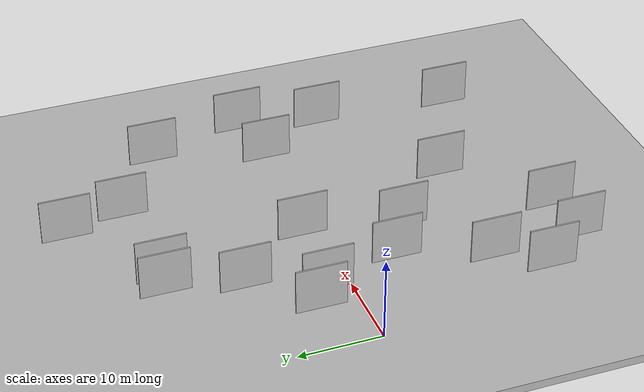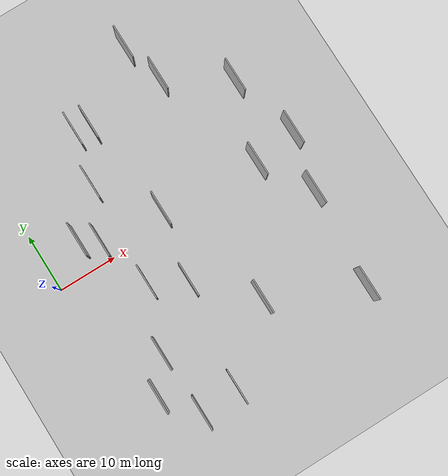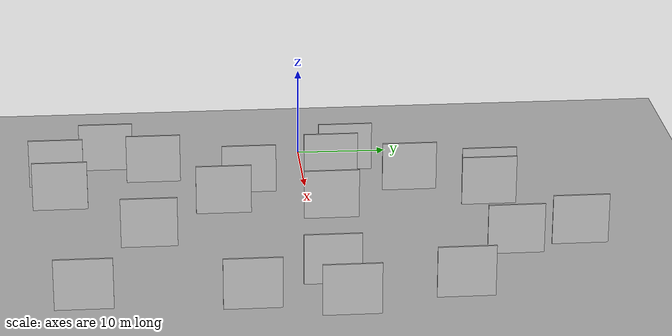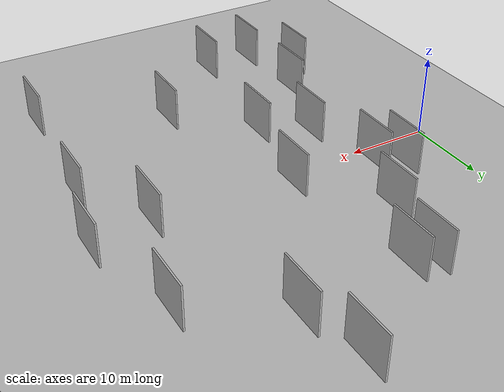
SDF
<?xml version="1.0" encoding="utf-8"?>

<sdf version="1.6">

   <world name="default">

      <gui fullscreen="0">

         <camera name="user_camera">

            <pose>-15 0 4.57585 0 0 0</pose>

            <view_controller>orbit</view_controller>

         </camera>

      </gui>

      <scene>

         <sky>

           <clouds>

             <speed>12</speed>

           </clouds>

         </sky>

         <ambient>0.4 0.4 0.4 1</ambient>

         <background>0.7 0.7 0.7 1</background>

         <shadows>1</shadows>

      </scene>

      <gravity>0 0 -9.8066</gravity>

      <magnetic_field>6e-06 2.3e-05 -4.2e-05</magnetic_field>

      <physics default="0" name="default_physics" type="ode">

         <ode>

            <solver>

               <type>quick</type>

               <iters>10</iters>

               <sor>1.0</sor>

               <use_dynamic_moi_rescaling>0</use_dynamic_moi_rescaling>

            </solver>

            <constraints>

               <cfm>0</cfm>

               <erp>0.2</erp>

               <contact_max_correcting_vel>100</contact_max_correcting_vel>

               <contact_surface_layer>0.001</contact_surface_layer>

            </constraints>

         </ode>

         <max_step_size>0.004</max_step_size>

         <real_time_factor>1</real_time_factor>

         <real_time_update_rate>250</real_time_update_rate>

      </physics>

      <light name="sun" type="directional">

         <cast_shadows>1</cast_shadows>

         <pose>0 0 10 0 0 0</pose>

         <diffuse>0.8 0.8 0.8 1</diffuse>

         <specular>0.2 0.2 0.2 1</specular>

         <attenuation>

            <range>1000</range>

            <constant>0.9</constant>

            <linear>0.01</linear>

            <quadratic>0.001</quadratic>

         </attenuation>

         <direction>-0.5 0.1 -0.9</direction>

      </light>

      <include>

         <name>ground_plane_1</name>

         <uri>model://HANNAS_ground_plane</uri>

         <pose>0 0 0  0 0 0</pose>

      </include>

      <include>

         <name>ground_plane_2</name>

         <uri>model://HANNAS_ground_plane</uri>

         <pose>100 0 0  0 0 0</pose>

      </include>

      <model name="HANNAS_wall_1">

         <static>1</static>

         <pose frame="">28.9887 27.7938 0.0 0.000000 0.000000 1.570796</pose>

         <link name="link">

            <pose frame="">0 0 3.00 0 0 0</pose>

            <collision name="collision">

               <geometry>

                  <box>

                     <size>6.00 0.2 6.00</size>

                  </box>

               </geometry>

               <max_contacts>10</max_contacts>

               <surface>

                  <contact>

                     <ode/>

                  </contact>

                  <bounce/>

                  <friction>

                     <torsional>

                        <ode/>

                     </torsional>

                     <ode/>

                  </friction>

               </surface>

            </collision>

            <visual name="visual">

               <cast_shadows>0</cast_shadows>

               <geometry>

                  <box>

                     <size>6.00 0.2 6.00</size>

                  </box>

               </geometry>

               <material>

                  <script>

                     <uri>model://HANNAS_wall/materials/scripts</uri>

                     <uri>model://HANNAS_wall/materials/textures</uri>

                     <name>vrc/HANNAS_wall</name>

                  </script>

               </material>

            </visual>

            <self_collide>0</self_collide>

            <enable_wind>0</enable_wind>

            <kinematic>0</kinematic>

         </link>

      </model>

      <model name="HANNAS_wall_2">

         <static>1</static>

         <pose frame="">8.4954 -16.9123 0.0 0.000000 0.000000 1.570796</pose>

         <link name="link">

            <pose frame="">0 0 3.00 0 0 0</pose>

            <collision name="collision">

               <geometry>

                  <box>

                     <size>6.00 0.2 6.00</size>

                  </box>

               </geometry>

               <max_contacts>10</max_contacts>

               <surface>

                  <contact>

                     <ode/>

                  </contact>

                  <bounce/>

                  <friction>

                     <torsional>

                        <ode/>

                     </torsional>

                     <ode/>

                  </friction>

               </surface>

            </collision>

            <visual name="visual">

               <cast_shadows>0</cast_shadows>

               <geometry>

                  <box>

                     <size>6.00 0.2 6.00</size>

                  </box>

               </geometry>

               <material>

                  <script>

                     <uri>model://HANNAS_wall/materials/scripts</uri>

                     <uri>model://HANNAS_wall/materials/textures</uri>

                     <name>vrc/HANNAS_wall</name>

                  </script>

               </material>

            </visual>

            <self_collide>0</self_collide>

            <enable_wind>0</enable_wind>

            <kinematic>0</kinematic>

         </link>

      </model>

      <model name="HANNAS_wall_3">

         <static>1</static>

         <pose frame="">41.1739 -24.6306 0.0 0.000000 0.000000 1.570796</pose>

         <link name="link">

            <pose frame="">0 0 3.00 0 0 0</pose>

            <collision name="collision">

               <geometry>

                  <box>

                     <size>6.00 0.2 6.00</size>

                  </box>

               </geometry>

               <max_contacts>10</max_contacts>

               <surface>

                  <contact>

                     <ode/>

                  </contact>

                  <bounce/>

                  <friction>

                     <torsional>

                        <ode/>

                     </torsional>

                     <ode/>

                  </friction>

               </surface>

            </collision>

            <visual name="visual">

               <cast_shadows>0</cast_shadows>

               <geometry>

                  <box>

                     <size>6.00 0.2 6.00</size>

                  </box>

               </geometry>

               <material>

                  <script>

                     <uri>model://HANNAS_wall/materials/scripts</uri>

                     <uri>model://HANNAS_wall/materials/textures</uri>

                     <name>vrc/HANNAS_wall</name>

                  </script>

               </material>

            </visual>

            <self_collide>0</self_collide>

            <enable_wind>0</enable_wind>

            <kinematic>0</kinematic>

         </link>

      </model>

      <model name="HANNAS_wall_4">

         <static>1</static>

         <pose frame="">6.5806 4.8067 0.0 0.000000 0.000000 1.570796</pose>

         <link name="link">

            <pose frame="">0 0 3.00 0 0 0</pose>

            <collision name="collision">

               <geometry>

                  <box>

                     <size>6.00 0.2 6.00</size>

                  </box>

               </geometry>

               <max_contacts>10</max_contacts>

               <surface>

                  <contact>

                     <ode/>

                  </contact>

                  <bounce/>

                  <friction>

                     <torsional>

                        <ode/>

                     </torsional>

                     <ode/>

                  </friction>

               </surface>

            </collision>

            <visual name="visual">

               <cast_shadows>0</cast_shadows>

               <geometry>

                  <box>

                     <size>6.00 0.2 6.00</size>

                  </box>

               </geometry>

               <material>

                  <script>

                     <uri>model://HANNAS_wall/materials/scripts</uri>

                     <uri>model://HANNAS_wall/materials/textures</uri>

                     <name>vrc/HANNAS_wall</name>

                  </script>

               </material>

            </visual>

            <self_collide>0</self_collide>

            <enable_wind>0</enable_wind>

            <kinematic>0</kinematic>

         </link>

      </model>

      <model name="HANNAS_wall_5">

         <static>1</static>

         <pose frame="">4.6306 -22.2022 0.0 0.000000 0.000000 1.570796</pose>

         <link name="link">

            <pose frame="">0 0 3.00 0 0 0</pose>

            <collision name="collision">

               <geometry>

                  <box>

                     <size>6.00 0.2 6.00</size>

                  </box>

               </geometry>

               <max_contacts>10</max_contacts>

               <surface>

                  <contact>

                     <ode/>

                  </contact>

                  <bounce/>

                  <friction>

                     <torsional>

                        <ode/>

                     </torsional>

                     <ode/>

                  </friction>

               </surface>

            </collision>

            <visual name="visual">

               <cast_shadows>0</cast_shadows>

               <geometry>

                  <box>

                     <size>6.00 0.2 6.00</size>

                  </box>

               </geometry>

               <material>

                  <script>

                     <uri>model://HANNAS_wall/materials/scripts</uri>

                     <uri>model://HANNAS_wall/materials/textures</uri>

                     <name>vrc/HANNAS_wall</name>

                  </script>

               </material>

            </visual>

            <self_collide>0</self_collide>

            <enable_wind>0</enable_wind>

            <kinematic>0</kinematic>

         </link>

      </model>

      <model name="HANNAS_wall_6">

         <static>1</static>

         <pose frame="">20.1638 2.1118 0.0 0.000000 0.000000 1.570796</pose>

         <link name="link">

            <pose frame="">0 0 3.00 0 0 0</pose>

            <collision name="collision">

               <geometry>

                  <box>

                     <size>6.00 0.2 6.00</size>

                  </box>

               </geometry>

               <max_contacts>10</max_contacts>

               <surface>

                  <contact>

                     <ode/>

                  </contact>

                  <bounce/>

                  <friction>

                     <torsional>

                        <ode/>

                     </torsional>

                     <ode/>

                  </friction>

               </surface>

            </collision>

            <visual name="visual">

               <cast_shadows>0</cast_shadows>

               <geometry>

                  <box>

                     <size>6.00 0.2 6.00</size>

                  </box>

               </geometry>

               <material>

                  <script>

                     <uri>model://HANNAS_wall/materials/scripts</uri>

                     <uri>model://HANNAS_wall/materials/textures</uri>

                     <name>vrc/HANNAS_wall</name>

                  </script>

               </material>

            </visual>

            <self_collide>0</self_collide>

            <enable_wind>0</enable_wind>

            <kinematic>0</kinematic>

         </link>

      </model>

      <model name="HANNAS_wall_7">

         <static>1</static>

         <pose frame="">12.2830 -6.4026 0.0 0.000000 0.000000 1.570796</pose>

         <link name="link">

            <pose frame="">0 0 3.00 0 0 0</pose>

            <collision name="collision">

               <geometry>

                  <box>

                     <size>6.00 0.2 6.00</size>

                  </box>

               </geometry>

               <max_contacts>10</max_contacts>

               <surface>

                  <contact>

                     <ode/>

                  </contact>

                  <bounce/>

                  <friction>

                     <torsional>

                        <ode/>

                     </torsional>

                     <ode/>

                  </friction>

               </surface>

            </collision>

            <visual name="visual">

               <cast_shadows>0</cast_shadows>

               <geometry>

                  <box>

                     <size>6.00 0.2 6.00</size>

                  </box>

               </geometry>

               <material>

                  <script>

                     <uri>model://HANNAS_wall/materials/scripts</uri>

                     <uri>model://HANNAS_wall/materials/textures</uri>

                     <name>vrc/HANNAS_wall</name>

                  </script>

               </material>

            </visual>

            <self_collide>0</self_collide>

            <enable_wind>0</enable_wind>

            <kinematic>0</kinematic>

         </link>

      </model>

      <model name="HANNAS_wall_8">

         <static>1</static>

         <pose frame="">42.2926 -7.7205 0.0 0.000000 0.000000 1.570796</pose>

         <link name="link">

            <pose frame="">0 0 3.00 0 0 0</pose>

            <collision name="collision">

               <geometry>

                  <box>

                     <size>6.00 0.2 6.00</size>

                  </box>

               </geometry>

               <max_contacts>10</max_contacts>

               <surface>

                  <contact>

                     <ode/>

                  </contact>

                  <bounce/>

                  <friction>

                     <torsional>

                        <ode/>

                     </torsional>

                     <ode/>

                  </friction>

               </surface>

            </collision>

            <visual name="visual">

               <cast_shadows>0</cast_shadows>

               <geometry>

                  <box>

                     <size>6.00 0.2 6.00</size>

                  </box>

               </geometry>

               <material>

                  <script>

                     <uri>model://HANNAS_wall/materials/scripts</uri>

                     <uri>model://HANNAS_wall/materials/textures</uri>

                     <name>vrc/HANNAS_wall</name>

                  </script>

               </material>

            </visual>

            <self_collide>0</self_collide>

            <enable_wind>0</enable_wind>

            <kinematic>0</kinematic>

         </link>

      </model>

      <model name="HANNAS_wall_9">

         <static>1</static>

         <pose frame="">26.2933 -17.7617 0.0 0.000000 0.000000 1.570796</pose>

         <link name="link">

            <pose frame="">0 0 3.00 0 0 0</pose>

            <collision name="collision">

               <geometry>

                  <box>

                     <size>6.00 0.2 6.00</size>

                  </box>

               </geometry>

               <max_contacts>10</max_contacts>

               <surface>

                  <contact>

                     <ode/>

                  </contact>

                  <bounce/>

                  <friction>

                     <torsional>

                        <ode/>

                     </torsional>

                     <ode/>

                  </friction>

               </surface>

            </collision>

            <visual name="visual">

               <cast_shadows>0</cast_shadows>

               <geometry>

                  <box>

                     <size>6.00 0.2 6.00</size>

                  </box>

               </geometry>

               <material>

                  <script>

                     <uri>model://HANNAS_wall/materials/scripts</uri>

                     <uri>model://HANNAS_wall/materials/textures</uri>

                     <name>vrc/HANNAS_wall</name>

                  </script>

               </material>

            </visual>

            <self_collide>0</self_collide>

            <enable_wind>0</enable_wind>

            <kinematic>0</kinematic>

         </link>

      </model>

      <model name="HANNAS_wall_10">

         <static>1</static>

         <pose frame="">17.6846 19.6714 0.0 0.000000 0.000000 1.570796</pose>

         <link name="link">

            <pose frame="">0 0 3.00 0 0 0</pose>

            <collision name="collision">

               <geometry>

                  <box>

                     <size>6.00 0.2 6.00</size>

                  </box>

               </geometry>

               <max_contacts>10</max_contacts>

               <surface>

                  <contact>

                     <ode/>

                  </contact>

                  <bounce/>

                  <friction>

                     <torsional>

                        <ode/>

                     </torsional>

                     <ode/>

                  </friction>

               </surface>

            </collision>

            <visual name="visual">

               <cast_shadows>0</cast_shadows>

               <geometry>

                  <box>

                     <size>6.00 0.2 6.00</size>

                  </box>

               </geometry>

               <material>

                  <script>

                     <uri>model://HANNAS_wall/materials/scripts</uri>

                     <uri>model://HANNAS_wall/materials/textures</uri>

                     <name>vrc/HANNAS_wall</name>

                  </script>

               </material>

            </visual>

            <self_collide>0</self_collide>

            <enable_wind>0</enable_wind>

            <kinematic>0</kinematic>

         </link>

      </model>

      <model name="HANNAS_wall_11">

         <static>1</static>

         <pose frame="">44.4662 2.0539 0.0 0.000000 0.000000 1.570796</pose>

         <link name="link">

            <pose frame="">0 0 3.00 0 0 0</pose>

            <collision name="collision">

               <geometry>

                  <box>

                     <size>6.00 0.2 6.00</size>

                  </box>

               </geometry>

               <max_contacts>10</max_contacts>

               <surface>

                  <contact>

                     <ode/>

                  </contact>

                  <bounce/>

                  <friction>

                     <torsional>

                        <ode/>

                     </torsional>

                     <ode/>

                  </friction>

               </surface>

            </collision>

            <visual name="visual">

               <cast_shadows>0</cast_shadows>

               <geometry>

                  <box>

                     <size>6.00 0.2 6.00</size>

                  </box>

               </geometry>

               <material>

                  <script>

                     <uri>model://HANNAS_wall/materials/scripts</uri>

                     <uri>model://HANNAS_wall/materials/textures</uri>

                     <name>vrc/HANNAS_wall</name>

                  </script>

               </material>

            </visual>

            <self_collide>0</self_collide>

            <enable_wind>0</enable_wind>

            <kinematic>0</kinematic>

         </link>

      </model>

      <model name="HANNAS_wall_12">

         <static>1</static>

         <pose frame="">41.1675 13.9838 0.0 0.000000 0.000000 1.570796</pose>

         <link name="link">

            <pose frame="">0 0 3.00 0 0 0</pose>

            <collision name="collision">

               <geometry>

                  <box>

                     <size>6.00 0.2 6.00</size>

                  </box>

               </geometry>

               <max_contacts>10</max_contacts>

               <surface>

                  <contact>

                     <ode/>

                  </contact>

                  <bounce/>

                  <friction>

                     <torsional>

                        <ode/>

                     </torsional>

                     <ode/>

                  </friction>

               </surface>

            </collision>

            <visual name="visual">

               <cast_shadows>0</cast_shadows>

               <geometry>

                  <box>

                     <size>6.00 0.2 6.00</size>

                  </box>

               </geometry>

               <material>

                  <script>

                     <uri>model://HANNAS_wall/materials/scripts</uri>

                     <uri>model://HANNAS_wall/materials/textures</uri>

                     <name>vrc/HANNAS_wall</name>

                  </script>

               </material>

            </visual>

            <self_collide>0</self_collide>

            <enable_wind>0</enable_wind>

            <kinematic>0</kinematic>

         </link>

      </model>

      <model name="HANNAS_wall_13">

         <static>1</static>

         <pose frame="">9.0089 -27.7426 0.0 0.000000 0.000000 1.570796</pose>

         <link name="link">

            <pose frame="">0 0 3.00 0 0 0</pose>

            <collision name="collision">

               <geometry>

                  <box>

                     <size>6.00 0.2 6.00</size>

                  </box>

               </geometry>

               <max_contacts>10</max_contacts>

               <surface>

                  <contact>

                     <ode/>

                  </contact>

                  <bounce/>

                  <friction>

                     <torsional>

                        <ode/>

                     </torsional>

                     <ode/>

                  </friction>

               </surface>

            </collision>

            <visual name="visual">

               <cast_shadows>0</cast_shadows>

               <geometry>

                  <box>

                     <size>6.00 0.2 6.00</size>

                  </box>

               </geometry>

               <material>

                  <script>

                     <uri>model://HANNAS_wall/materials/scripts</uri>

                     <uri>model://HANNAS_wall/materials/textures</uri>

                     <name>vrc/HANNAS_wall</name>

                  </script>

               </material>

            </visual>

            <self_collide>0</self_collide>

            <enable_wind>0</enable_wind>

            <kinematic>0</kinematic>

         </link>

      </model>

      <model name="HANNAS_wall_14">

         <static>1</static>

         <pose frame="">37.0239 0.7836 0.0 0.000000 0.000000 1.570796</pose>

         <link name="link">

            <pose frame="">0 0 3.00 0 0 0</pose>

            <collision name="collision">

               <geometry>

                  <box>

                     <size>6.00 0.2 6.00</size>

                  </box>

               </geometry>

               <max_contacts>10</max_contacts>

               <surface>

                  <contact>

                     <ode/>

                  </contact>

                  <bounce/>

                  <friction>

                     <torsional>

                        <ode/>

                     </torsional>

                     <ode/>

                  </friction>

               </surface>

            </collision>

            <visual name="visual">

               <cast_shadows>0</cast_shadows>

               <geometry>

                  <box>

                     <size>6.00 0.2 6.00</size>

                  </box>

               </geometry>

               <material>

                  <script>

                     <uri>model://HANNAS_wall/materials/scripts</uri>

                     <uri>model://HANNAS_wall/materials/textures</uri>

                     <name>vrc/HANNAS_wall</name>

                  </script>

               </material>

            </visual>

            <self_collide>0</self_collide>

            <enable_wind>0</enable_wind>

            <kinematic>0</kinematic>

         </link>

      </model>

      <model name="HANNAS_wall_15">

         <static>1</static>

         <pose frame="">12.9345 11.4031 0.0 0.000000 0.000000 1.570796</pose>

         <link name="link">

            <pose frame="">0 0 3.00 0 0 0</pose>

            <collision name="collision">

               <geometry>

                  <box>

                     <size>6.00 0.2 6.00</size>

                  </box>

               </geometry>

               <max_contacts>10</max_contacts>

               <surface>

                  <contact>

                     <ode/>

                  </contact>

                  <bounce/>

                  <friction>

                     <torsional>

                        <ode/>

                     </torsional>

                     <ode/>

                  </friction>

               </surface>

            </collision>

            <visual name="visual">

               <cast_shadows>0</cast_shadows>

               <geometry>

                  <box>

                     <size>6.00 0.2 6.00</size>

                  </box>

               </geometry>

               <material>

                  <script>

                     <uri>model://HANNAS_wall/materials/scripts</uri>

                     <uri>model://HANNAS_wall/materials/textures</uri>

                     <name>vrc/HANNAS_wall</name>

                  </script>

               </material>

            </visual>

            <self_collide>0</self_collide>

            <enable_wind>0</enable_wind>

            <kinematic>0</kinematic>

         </link>

      </model>

      <model name="HANNAS_wall_16">

         <static>1</static>

         <pose frame="">30.9821 20.6169 0.0 0.000000 0.000000 1.570796</pose>

         <link name="link">

            <pose frame="">0 0 3.00 0 0 0</pose>

            <collision name="collision">

               <geometry>

                  <box>

                     <size>6.00 0.2 6.00</size>

                  </box>

               </geometry>

               <max_contacts>10</max_contacts>

               <surface>

                  <contact>

                     <ode/>

                  </contact>

                  <bounce/>

                  <friction>

                     <torsional>

                        <ode/>

                     </torsional>

                     <ode/>

                  </friction>

               </surface>

            </collision>

            <visual name="visual">

               <cast_shadows>0</cast_shadows>

               <geometry>

                  <box>

                     <size>6.00 0.2 6.00</size>

                  </box>

               </geometry>

               <material>

                  <script>

                     <uri>model://HANNAS_wall/materials/scripts</uri>

                     <uri>model://HANNAS_wall/materials/textures</uri>

                     <name>vrc/HANNAS_wall</name>

                  </script>

               </material>

            </visual>

            <self_collide>0</self_collide>

            <enable_wind>0</enable_wind>

            <kinematic>0</kinematic>

         </link>

      </model>

      <model name="HANNAS_wall_17">

         <static>1</static>

         <pose frame="">17.9545 -9.4838 0.0 0.000000 0.000000 1.570796</pose>

         <link name="link">

            <pose frame="">0 0 3.00 0 0 0</pose>

            <collision name="collision">

               <geometry>

                  <box>

                     <size>6.00 0.2 6.00</size>

                  </box>

               </geometry>

               <max_contacts>10</max_contacts>

               <surface>

                  <contact>

                     <ode/>

                  </contact>

                  <bounce/>

                  <friction>

                     <torsional>

                        <ode/>

                     </torsional>

                     <ode/>

                  </friction>

               </surface>

            </collision>

            <visual name="visual">

               <cast_shadows>0</cast_shadows>

               <geometry>

                  <box>

                     <size>6.00 0.2 6.00</size>

                  </box>

               </geometry>

               <material>

                  <script>

                     <uri>model://HANNAS_wall/materials/scripts</uri>

                     <uri>model://HANNAS_wall/materials/textures</uri>

                     <name>vrc/HANNAS_wall</name>

                  </script>

               </material>

            </visual>

            <self_collide>0</self_collide>

            <enable_wind>0</enable_wind>

            <kinematic>0</kinematic>

         </link>

      </model>

      <model name="HANNAS_wall_18">

         <static>1</static>

         <pose frame="">15.6321 -27.2532 0.0 0.000000 0.000000 1.570796</pose>

         <link name="link">

            <pose frame="">0 0 3.00 0 0 0</pose>

            <collision name="collision">

               <geometry>

                  <box>

                     <size>6.00 0.2 6.00</size>

                  </box>

               </geometry>

               <max_contacts>10</max_contacts>

               <surface>

                  <contact>

                     <ode/>

                  </contact>

                  <bounce/>

                  <friction>

                     <torsional>

                        <ode/>

                     </torsional>

                     <ode/>

                  </friction>

               </surface>

            </collision>

            <visual name="visual">

               <cast_shadows>0</cast_shadows>

               <geometry>

                  <box>

                     <size>6.00 0.2 6.00</size>

                  </box>

               </geometry>

               <material>

                  <script>

                     <uri>model://HANNAS_wall/materials/scripts</uri>

                     <uri>model://HANNAS_wall/materials/textures</uri>

                     <name>vrc/HANNAS_wall</name>

                  </script>

               </material>

            </visual>

            <self_collide>0</self_collide>

            <enable_wind>0</enable_wind>

            <kinematic>0</kinematic>

         </link>

      </model>

      <model name="HANNAS_wall_19">

         <static>1</static>

         <pose frame="">15.0263 20.0381 0.0 0.000000 0.000000 1.570796</pose>

         <link name="link">

            <pose frame="">0 0 3.00 0 0 0</pose>

            <collision name="collision">

               <geometry>

                  <box>

                     <size>6.00 0.2 6.00</size>

                  </box>

               </geometry>

               <max_contacts>10</max_contacts>

               <surface>

                  <contact>

                     <ode/>

                  </contact>

                  <bounce/>

                  <friction>

                     <torsional>

                        <ode/>

                     </torsional>

                     <ode/>

                  </friction>

               </surface>

            </collision>

            <visual name="visual">

               <cast_shadows>0</cast_shadows>

               <geometry>

                  <box>

                     <size>6.00 0.2 6.00</size>

                  </box>

               </geometry>

               <material>

                  <script>

                     <uri>model://HANNAS_wall/materials/scripts</uri>

                     <uri>model://HANNAS_wall/materials/textures</uri>

                     <name>vrc/HANNAS_wall</name>

                  </script>

               </material>

            </visual>

            <self_collide>0</self_collide>

            <enable_wind>0</enable_wind>

            <kinematic>0</kinematic>

         </link>

      </model>

      <model name="HANNAS_wall_20">

         <static>1</static>

         <pose frame="">9.4974 2.9398 0.0 0.000000 0.000000 1.570796</pose>

         <link name="link">

            <pose frame="">0 0 3.00 0 0 0</pose>

            <collision name="collision">

               <geometry>

                  <box>

                     <size>6.00 0.2 6.00</size>

                  </box>

               </geometry>

               <max_contacts>10</max_contacts>

               <surface>

                  <contact>

                     <ode/>

                  </contact>

                  <bounce/>

                  <friction>

                     <torsional>

                        <ode/>

                     </torsional>

                     <ode/>

                  </friction>

               </surface>

            </collision>

            <visual name="visual">

               <cast_shadows>0</cast_shadows>

               <geometry>

                  <box>

                     <size>6.00 0.2 6.00</size>

                  </box>

               </geometry>

               <material>

                  <script>

                     <uri>model://HANNAS_wall/materials/scripts</uri>

                     <uri>model://HANNAS_wall/materials/textures</uri>

                     <name>vrc/HANNAS_wall</name>

                  </script>

               </material>

            </visual>

            <self_collide>0</self_collide>

            <enable_wind>0</enable_wind>

            <kinematic>0</kinematic>

         </link>

      </model>

   </world>

</sdf>

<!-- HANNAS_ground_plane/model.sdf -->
<sdf version="1.4">
<model name="HANNAS_ground_plane">
  <static>true</static>
    <link name="link">
      <collision name="collision">
        <geometry>
          <plane>
            <normal>0 0 1</normal>
            <size>1000 1000</size>
          </plane>
        </geometry>
        <surface>
          <friction>
            <ode>
              <mu>100</mu>
              <mu2>50</mu2>
            </ode>
          </friction>
        </surface>
      </collision>
      <visual name="visual">
        <cast_shadows>false</cast_shadows>
        <geometry>
          <plane>
            <normal>0 0 1</normal>
            <size>1000 1000</size>
          </plane>
        </geometry>
        <material>
          <script>
            <uri>model://HANNAS_ground_plane/materials/scripts/HANNAS_ground_plane.material</uri>
	    <uri>model://HANNAS_ground_plane/materials/textures</uri>
            <name>HANNASGroundPlane/Image</name>
          </script>
        </material>
      </visual>
    </link>
  </model>
</sdf>
